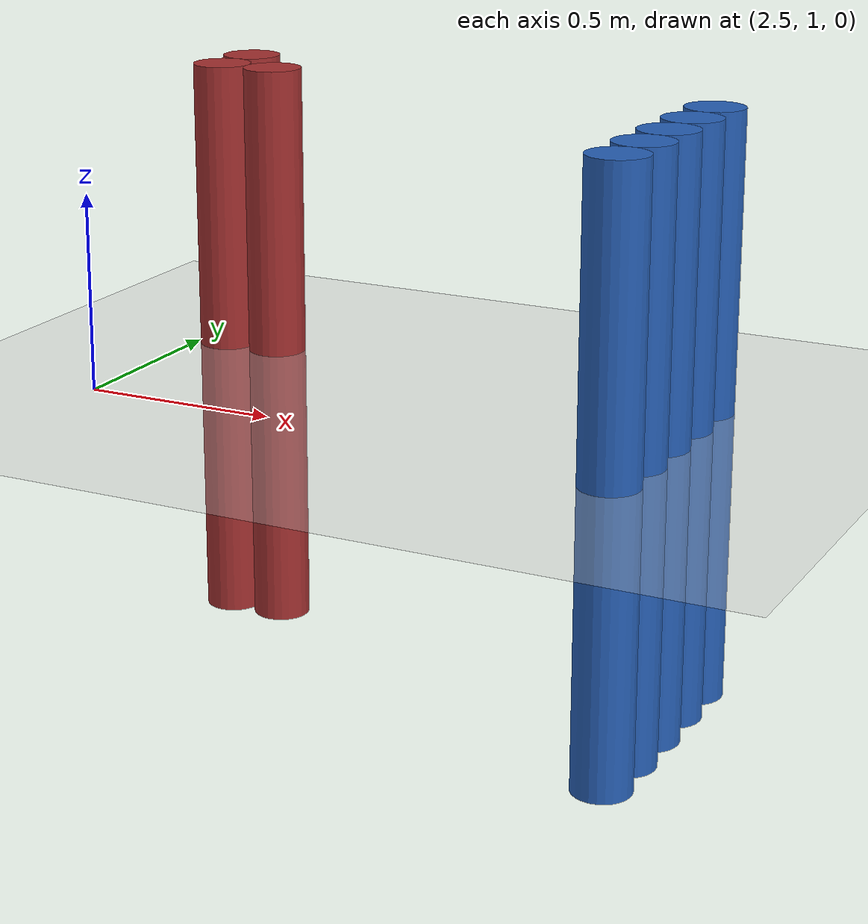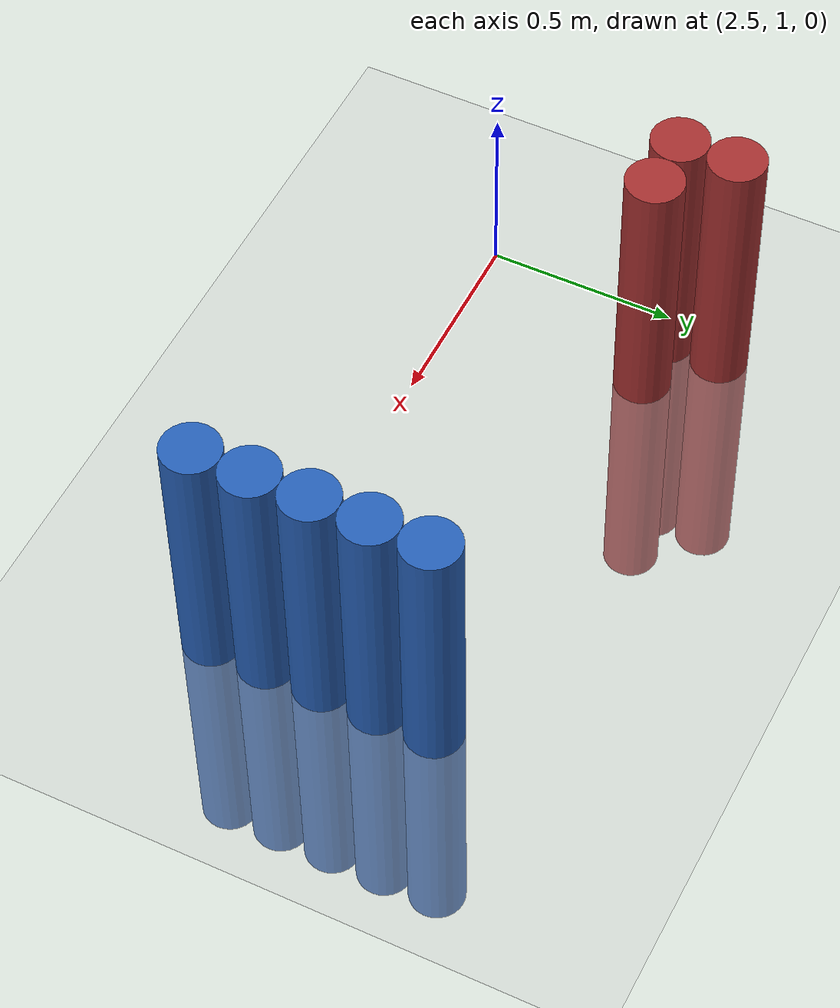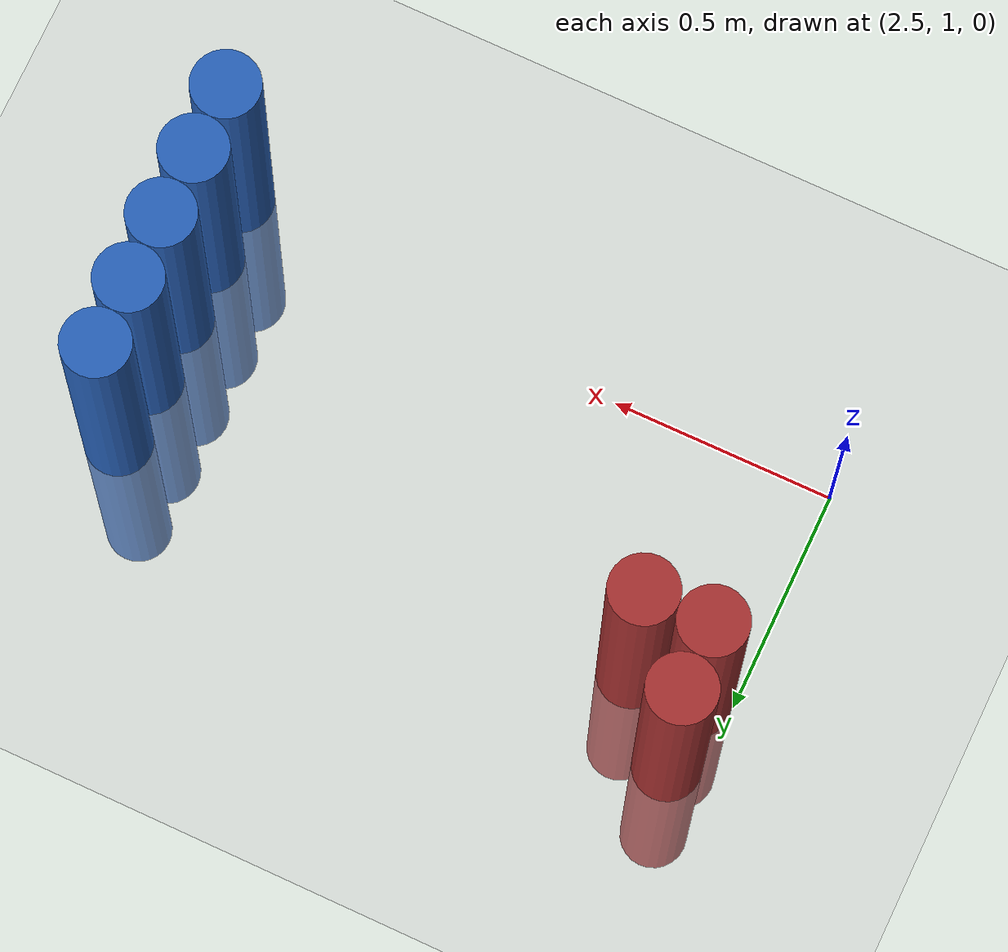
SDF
<sdf version="1.6">
 <world name="default">
  <model name="ground_plane">
   <static>1</static>
   <link name="link">
    <collision name="collision">
     <geometry><plane><normal>0 0 1</normal><size>100 100</size></plane></geometry>
     <surface><friction><ode><mu>100</mu><mu2>50</mu2></ode></friction></surface>
    </collision>
    <visual name="visual">
     <cast_shadows>0</cast_shadows>
     <geometry><plane><normal>0 0 1</normal><size>100 100</size></plane></geometry>
     <material>
      <script><uri>file://media/materials/scripts/gazebo.material</uri><name>Gazebo/Grey</name></script>
     </material>
    </visual>
   </link>
  </model>
  <model name="unit_cylinder_126">
   <static>1</static>
   <pose>3.925000 0.925000 0.000000 0.000000 0.000000 0.000000</pose>
   <link name="link">
    <inertial>
     <mass>1</mass>
     <inertia><ixx>0.145833</ixx><ixy>0</ixy><ixz>0</ixz><iyy>0.145833</iyy><iyz>0</iyz><izz>0.125</izz></inertia>
    </inertial>
    <collision name="collision">
     <geometry><cylinder><radius>0.075000</radius><length>1.5</length></cylinder></geometry>
    </collision>
    <visual name="visual">
     <geometry><cylinder><radius>0.075000</radius><length>1.5</length></cylinder></geometry>
     <material>
      <ambient>0.152000 0.379000 0.720000 1</ambient>
      <diffuse>0.152000 0.379000 0.720000 1</diffuse>
     </material>
     <material>
      <script><name>Gazebo/Grey</name><uri>file://media/materials/scripts/gazebo.material</uri></script>
     </material>
    </visual>
   </link>
  </model>
  <model name="unit_cylinder_128">
   <static>1</static>
   <pose>3.925000 1.075000 0.000000 0.000000 0.000000 0.000000</pose>
   <link name="link">
    <inertial>
     <mass>1</mass>
     <inertia><ixx>0.145833</ixx><ixy>0</ixy><ixz>0</ixz><iyy>0.145833</iyy><iyz>0</iyz><izz>0.125</izz></inertia>
    </inertial>
    <collision name="collision">
     <geometry><cylinder><radius>0.075000</radius><length>1.5</length></cylinder></geometry>
    </collision>
    <visual name="visual">
     <geometry><cylinder><radius>0.075000</radius><length>1.5</length></cylinder></geometry>
     <material>
      <ambient>0.152000 0.379000 0.720000 1</ambient>
      <diffuse>0.152000 0.379000 0.720000 1</diffuse>
     </material>
     <material>
      <script><name>Gazebo/Grey</name><uri>file://media/materials/scripts/gazebo.material</uri></script>
     </material>
    </visual>
   </link>
  </model>
  <model name="unit_cylinder_130">
   <static>1</static>
   <pose>3.925000 1.225000 0.000000 0.000000 0.000000 0.000000</pose>
   <link name="link">
    <inertial>
     <mass>1</mass>
     <inertia><ixx>0.145833</ixx><ixy>0</ixy><ixz>0</ixz><iyy>0.145833</iyy><iyz>0</iyz><izz>0.125</izz></inertia>
    </inertial>
    <collision name="collision">
     <geometry><cylinder><radius>0.075000</radius><length>1.5</length></cylinder></geometry>
    </collision>
    <visual name="visual">
     <geometry><cylinder><radius>0.075000</radius><length>1.5</length></cylinder></geometry>
     <material>
      <ambient>0.152000 0.379000 0.720000 1</ambient>
      <diffuse>0.152000 0.379000 0.720000 1</diffuse>
     </material>
     <material>
      <script><name>Gazebo/Grey</name><uri>file://media/materials/scripts/gazebo.material</uri></script>
     </material>
    </visual>
   </link>
  </model>
  <model name="unit_cylinder_132">
   <static>1</static>
   <pose>3.925000 1.375000 0.000000 0.000000 0.000000 0.000000</pose>
   <link name="link">
    <inertial>
     <mass>1</mass>
     <inertia><ixx>0.145833</ixx><ixy>0</ixy><ixz>0</ixz><iyy>0.145833</iyy><iyz>0</iyz><izz>0.125</izz></inertia>
    </inertial>
    <collision name="collision">
     <geometry><cylinder><radius>0.075000</radius><length>1.5</length></cylinder></geometry>
    </collision>
    <visual name="visual">
     <geometry><cylinder><radius>0.075000</radius><length>1.5</length></cylinder></geometry>
     <material>
      <ambient>0.152000 0.379000 0.720000 1</ambient>
      <diffuse>0.152000 0.379000 0.720000 1</diffuse>
     </material>
     <material>
      <script><name>Gazebo/Grey</name><uri>file://media/materials/scripts/gazebo.material</uri></script>
     </material>
    </visual>
   </link>
  </model>
  <model name="unit_cylinder_134">
   <static>1</static>
   <pose>3.925000 1.525000 0.000000 0.000000 0.000000 0.000000</pose>
   <link name="link">
    <inertial>
     <mass>1</mass>
     <inertia><ixx>0.145833</ixx><ixy>0</ixy><ixz>0</ixz><iyy>0.145833</iyy><iyz>0</iyz><izz>0.125</izz></inertia>
    </inertial>
    <collision name="collision">
     <geometry><cylinder><radius>0.075000</radius><length>1.5</length></cylinder></geometry>
    </collision>
    <visual name="visual">
     <geometry><cylinder><radius>0.075000</radius><length>1.5</length></cylinder></geometry>
     <material>
      <ambient>0.152000 0.379000 0.720000 1</ambient>
      <diffuse>0.152000 0.379000 0.720000 1</diffuse>
     </material>
     <material>
      <script><name>Gazebo/Grey</name><uri>file://media/materials/scripts/gazebo.material</uri></script>
     </material>
    </visual>
   </link>
  </model>
  <model name="unit_cylinder_289">
   <static>1</static>
   <pose>2.575000 1.525000 0.000000 0.000000 0.000000 0.000000</pose>
   <link name="link">
    <inertial>
     <mass>1</mass>
     <inertia><ixx>0.145833</ixx><ixy>0</ixy><ixz>0</ixz><iyy>0.145833</iyy><iyz>0</iyz><izz>0.125</izz></inertia>
    </inertial>
    <collision name="collision">
     <geometry><cylinder><radius>0.075000</radius><length>1.5</length></cylinder></geometry>
    </collision>
    <visual name="visual">
     <geometry><cylinder><radius>0.075000</radius><length>1.5</length></cylinder></geometry>
     <material>
      <ambient>0.648000 0.192000 0.192000 1</ambient>
      <diffuse>0.648000 0.192000 0.192000 1</diffuse>
     </material>
     <material>
      <script><name>Gazebo/Grey</name><uri>file://media/materials/scripts/gazebo.material</uri></script>
     </material>
    </visual>
   </link>
  </model>
  <model name="unit_cylinder_290">
   <static>1</static>
   <pose>2.575000 1.675000 0.000000 0.000000 0.000000 0.000000</pose>
   <link name="link">
    <inertial>
     <mass>1</mass>
     <inertia><ixx>0.145833</ixx><ixy>0</ixy><ixz>0</ixz><iyy>0.145833</iyy><iyz>0</iyz><izz>0.125</izz></inertia>
    </inertial>
    <collision name="collision">
     <geometry><cylinder><radius>0.075000</radius><length>1.5</length></cylinder></geometry>
    </collision>
    <visual name="visual">
     <geometry><cylinder><radius>0.075000</radius><length>1.5</length></cylinder></geometry>
     <material>
      <ambient>0.648000 0.192000 0.192000 1</ambient>
      <diffuse>0.648000 0.192000 0.192000 1</diffuse>
     </material>
     <material>
      <script><name>Gazebo/Grey</name><uri>file://media/materials/scripts/gazebo.material</uri></script>
     </material>
    </visual>
   </link>
  </model>
  <model name="unit_cylinder_291">
   <static>1</static>
   <pose>2.725000 1.525000 0.000000 0.000000 0.000000 0.000000</pose>
   <link name="link">
    <inertial>
     <mass>1</mass>
     <inertia><ixx>0.145833</ixx><ixy>0</ixy><ixz>0</ixz><iyy>0.145833</iyy><iyz>0</iyz><izz>0.125</izz></inertia>
    </inertial>
    <collision name="collision">
     <geometry><cylinder><radius>0.075000</radius><length>1.5</length></cylinder></geometry>
    </collision>
    <visual name="visual">
     <geometry><cylinder><radius>0.075000</radius><length>1.5</length></cylinder></geometry>
     <material>
      <ambient>0.648000 0.192000 0.192000 1</ambient>
      <diffuse>0.648000 0.192000 0.192000 1</diffuse>
     </material>
     <material>
      <script><name>Gazebo/Grey</name><uri>file://media/materials/scripts/gazebo.material</uri></script>
     </material>
    </visual>
   </link>
  </model>
  <model name="unit_cylinder_320">
   <static>1</static>
   <pose>3.925000 0.925000 0.000000 0.000000 0.000000 0.000000</pose>
   <link name="link">
    <inertial>
     <mass>1</mass>
     <inertia><ixx>0.145833</ixx><ixy>0</ixy><ixz>0</ixz><iyy>0.145833</iyy><iyz>0</iyz><izz>0.125</izz></inertia>
    </inertial>
    <collision name="collision">
     <geometry><cylinder><radius>0.075000</radius><length>1.5</length></cylinder></geometry>
    </collision>
    <visual name="visual">
     <geometry><cylinder><radius>0.075000</radius><length>1.5</length></cylinder></geometry>
     <material>
      <ambient>0.152000 0.379000 0.720000 1</ambient>
      <diffuse>0.152000 0.379000 0.720000 1</diffuse>
     </material>
     <material>
      <script><name>Gazebo/Grey</name><uri>file://media/materials/scripts/gazebo.material</uri></script>
     </material>
    </visual>
   </link>
  </model>
  <model name="unit_cylinder_321">
   <static>1</static>
   <pose>3.925000 1.075000 0.000000 0.000000 0.000000 0.000000</pose>
   <link name="link">
    <inertial>
     <mass>1</mass>
     <inertia><ixx>0.145833</ixx><ixy>0</ixy><ixz>0</ixz><iyy>0.145833</iyy><iyz>0</iyz><izz>0.125</izz></inertia>
    </inertial>
    <collision name="collision">
     <geometry><cylinder><radius>0.075000</radius><length>1.5</length></cylinder></geometry>
    </collision>
    <visual name="visual">
     <geometry><cylinder><radius>0.075000</radius><length>1.5</length></cylinder></geometry>
     <material>
      <ambient>0.152000 0.379000 0.720000 1</ambient>
      <diffuse>0.152000 0.379000 0.720000 1</diffuse>
     </material>
     <material>
      <script><name>Gazebo/Grey</name><uri>file://media/materials/scripts/gazebo.material</uri></script>
     </material>
    </visual>
   </link>
  </model>
  <model name="unit_cylinder_322">
   <static>1</static>
   <pose>3.925000 1.225000 0.000000 0.000000 0.000000 0.000000</pose>
   <link name="link">
    <inertial>
     <mass>1</mass>
     <inertia><ixx>0.145833</ixx><ixy>0</ixy><ixz>0</ixz><iyy>0.145833</iyy><iyz>0</iyz><izz>0.125</izz></inertia>
    </inertial>
    <collision name="collision">
     <geometry><cylinder><radius>0.075000</radius><length>1.5</length></cylinder></geometry>
    </collision>
    <visual name="visual">
     <geometry><cylinder><radius>0.075000</radius><length>1.5</length></cylinder></geometry>
     <material>
      <ambient>0.152000 0.379000 0.720000 1</ambient>
      <diffuse>0.152000 0.379000 0.720000 1</diffuse>
     </material>
     <material>
      <script><name>Gazebo/Grey</name><uri>file://media/materials/scripts/gazebo.material</uri></script>
     </material>
    </visual>
   </link>
  </model>
  <model name="unit_cylinder_323">
   <static>1</static>
   <pose>3.925000 1.375000 0.000000 0.000000 0.000000 0.000000</pose>
   <link name="link">
    <inertial>
     <mass>1</mass>
     <inertia><ixx>0.145833</ixx><ixy>0</ixy><ixz>0</ixz><iyy>0.145833</iyy><iyz>0</iyz><izz>0.125</izz></inertia>
    </inertial>
    <collision name="collision">
     <geometry><cylinder><radius>0.075000</radius><length>1.5</length></cylinder></geometry>
    </collision>
    <visual name="visual">
     <geometry><cylinder><radius>0.075000</radius><length>1.5</length></cylinder></geometry>
     <material>
      <ambient>0.152000 0.379000 0.720000 1</ambient>
      <diffuse>0.152000 0.379000 0.720000 1</diffuse>
     </material>
     <material>
      <script><name>Gazebo/Grey</name><uri>file://media/materials/scripts/gazebo.material</uri></script>
     </material>
    </visual>
   </link>
  </model>
  <model name="unit_cylinder_324">
   <static>1</static>
   <pose>3.925000 1.525000 0.000000 0.000000 0.000000 0.000000</pose>
   <link name="link">
    <inertial>
     <mass>1</mass>
     <inertia><ixx>0.145833</ixx><ixy>0</ixy><ixz>0</ixz><iyy>0.145833</iyy><iyz>0</iyz><izz>0.125</izz></inertia>
    </inertial>
    <collision name="collision">
     <geometry><cylinder><radius>0.075000</radius><length>1.5</length></cylinder></geometry>
    </collision>
    <visual name="visual">
     <geometry><cylinder><radius>0.075000</radius><length>1.5</length></cylinder></geometry>
     <material>
      <ambient>0.152000 0.379000 0.720000 1</ambient>
      <diffuse>0.152000 0.379000 0.720000 1</diffuse>
     </material>
     <material>
      <script><name>Gazebo/Grey</name><uri>file://media/materials/scripts/gazebo.material</uri></script>
     </material>
    </visual>
   </link>
  </model>
 </world>
</sdf>
